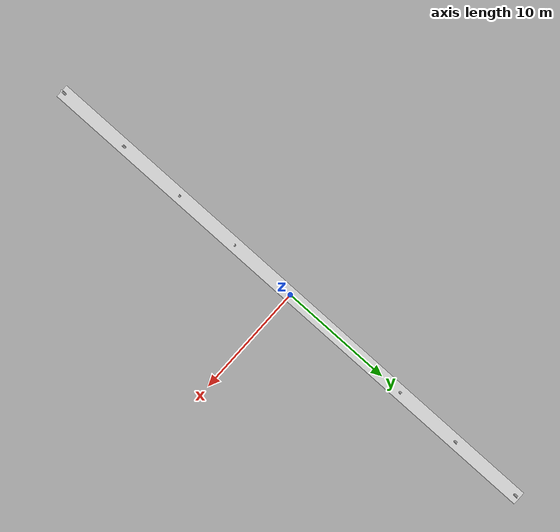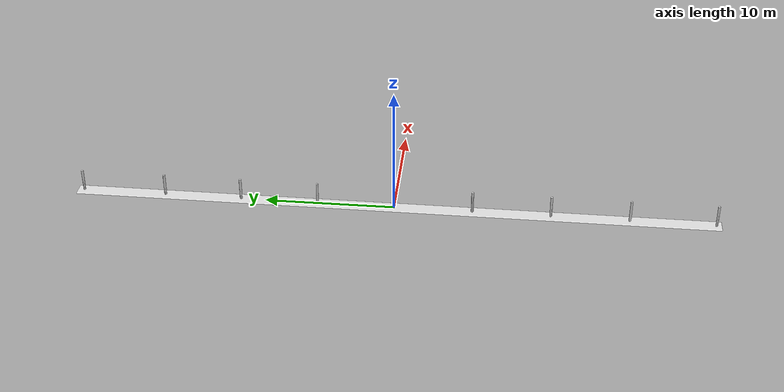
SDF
<?xml version="1.0" ?>
<sdf version="1.6">
  <model name="pasillo">
    <static>true</static>
    <link name="link">
      <collision name="collision">
        <geometry>
          <mesh>
            <uri>model://pasillo/meshes/pasillo.dae</uri>
          </mesh>
        </geometry>
      </collision>
      <visual name="visual">
        <geometry>
          <mesh>
            <uri>model://pasillo/meshes/pasillo.dae</uri>
          </mesh>
        </geometry>
      </visual>
    </link>
  </model>
</sdf>
